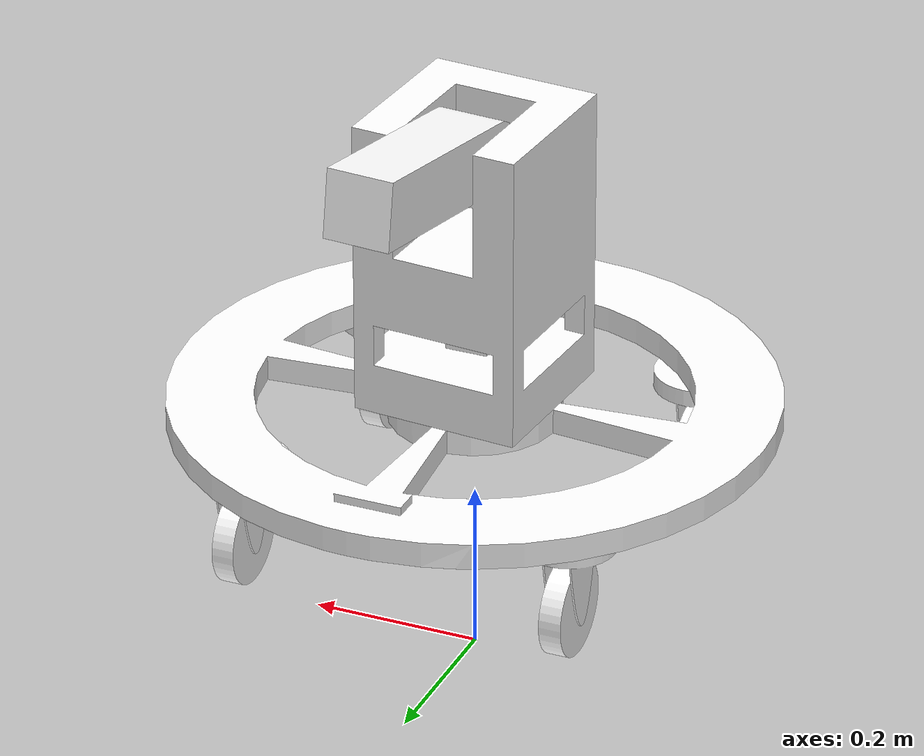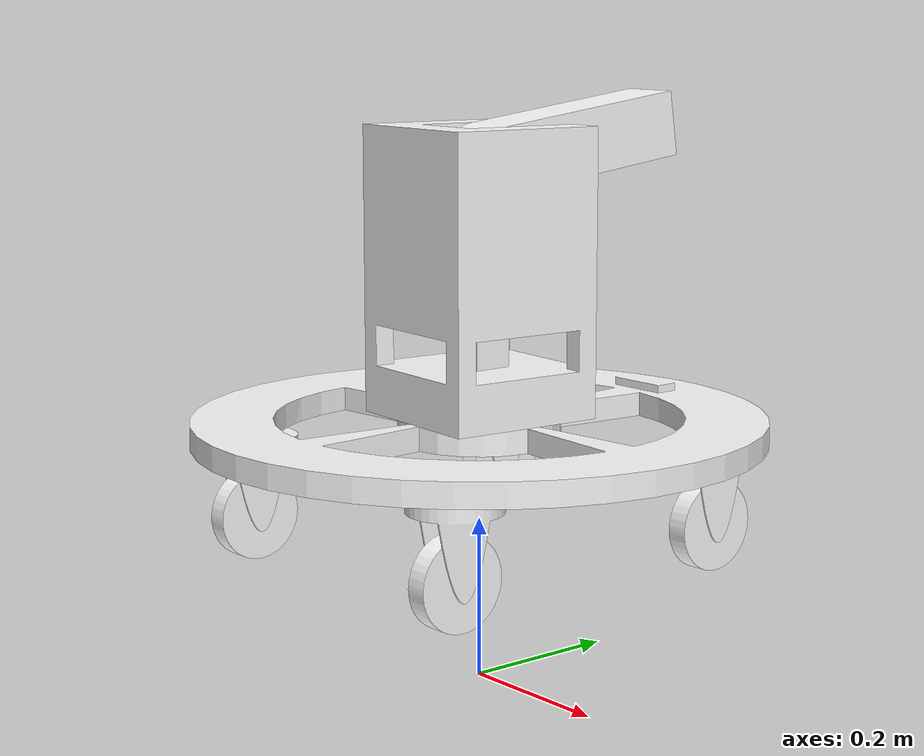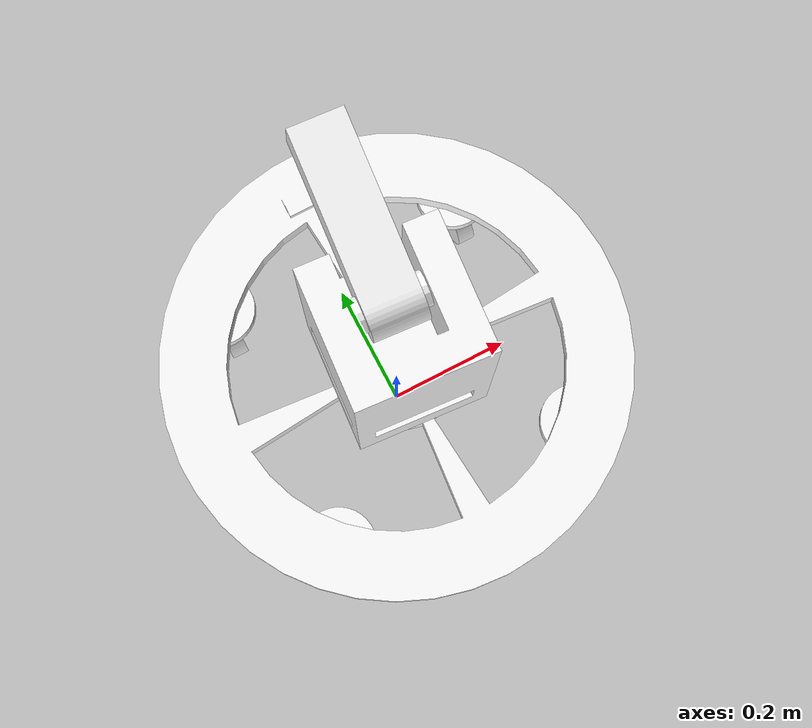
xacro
<?xml version="1.0" encoding="utf-8"?>
<robot name="simplesentry" xmlns:xacro="http://www.ros.org/wiki/xacro">

    <xacro:include filename="$(find sentry_laser_sim)/xacro_simple_sentry/chassis.xacro" />
    <xacro:include filename="$(find sentry_laser_sim)/xacro_simple_sentry/yaw.xacro" />
    <xacro:include filename="$(find sentry_laser_sim)/xacro_simple_sentry/pitch.xacro" />
    <xacro:include filename="$(find sentry_laser_sim)/xacro_simple_sentry/laser_imu.xacro" />

<!--trassimission-->
  <xacro:macro name="joint_transmission" params="prefix">
    <transmission name="trans_${prefix}">
      <type>transmission_interface/SimpleTransmission</type>
      <actuator name="${prefix}_actuator">
        <mechanicalReduction>1</mechanicalReduction>
      </actuator>
      <joint name="${prefix}_Joint">
        <hardwareInterface>hardware_interface/EffortJointInterface</hardwareInterface>
      </joint>
    </transmission>
  </xacro:macro>

<!--Joint-->
  <!--Baselink_Joint-->
  <joint name="Baselink_Joint" type="fixed">
    <origin xyz="0 0 0.3" rpy="0 0 0" />
    <parent link="base_footprint" />
    <child link="base_link" />
  </joint>

  <!--Yaw_Joint-->
  <joint
    name="Yaw_Joint"
    type="continuous">
    <origin
      xyz="3.2896E-05 0 0.09"
      rpy="0 0 0" />
    <parent
      link="base_link" />
    <child
      link="Yaw_Link" />
    <axis
      xyz="0 0 -1" />
  </joint>

  <!--Pitch_Joint-->
  <joint
    name="Pitch_Joint"
    type="continuous">
    <origin
      xyz="0.0015147 0.019943 0.25044"
      rpy="1.5708 0 3.1416" />
    <parent
      link="Yaw_Link" />
    <child
      link="Pitch_Link" />
    <axis
      xyz="0.99713 0 0.075736" />
  </joint>

  <!--Laser_Imu_Joint-->
  <joint
    name="Laser_Imu_Joint"
    type="fixed">
    <origin
      xyz="0 0 0"
      rpy="0 0 0" />
    <parent
      link="Yaw_Link" />
    <child
      link="laser_link" />
  </joint>

  <!--fake_laser_joint-->
  <joint
    name="fake_laser_joint"
    type="fixed">
    <origin
      xyz="0 0 0.01"
      rpy="0 0 0" />
    <parent
      link="laser_link" />
    <child
      link="laser_fake_link" />
  </joint>

<!--trassmission-->
  <xacro:joint_transmission prefix="Yaw"/>
  <xacro:joint_transmission prefix="Pitch"/>
  <xacro:joint_transmission prefix="Heading_Left_Front"/>
  <xacro:joint_transmission prefix="Driving_Left_Front"/>
  <xacro:joint_transmission prefix="Heading_Left_Back"/>
  <xacro:joint_transmission prefix="Driving_Left_Back"/>
  <xacro:joint_transmission prefix="Heading_Right_Front"/>
  <xacro:joint_transmission prefix="Driving_Right_Front"/>
  <xacro:joint_transmission prefix="Heading_Right_Back"/>
  <xacro:joint_transmission prefix="Driving_Right_Back"/>

    <!-- controller -->
  <gazebo>
    <plugin name="gazebo_ros_control" filename="libgazebo_ros_control.so">
                <rosDebugLevel>Debug</rosDebugLevel>
                <publishWheelTF>true</publishWheelTF>
                <robotNamespace>/simple_sentry</robotNamespace>
                <robotSimType>gazebo_ros_control/DefaultRobotHWSim</robotSimType>
                <publishTf>1</publishTf>
                <publishWheelJointState>true</publishWheelJointState>
                <alwaysOn>true</alwaysOn>
                <updateRate>20.0</updateRate>
                <legacyMode>true</legacyMode>
    </plugin>
  </gazebo>

</robot>

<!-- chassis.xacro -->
<robot name="sentry_chassis"   xmlns:xacro="http://www.ros.org/wiki/xacro">

  <link
    name="base_link">
    <inertial>
      <origin
        xyz="2.3351E-07 0.00097091 0.015088"
        rpy="0 0 0" />
      <mass
        value="6.9215" />
      <inertia
        ixx="0.27562"
        ixy="3.4079E-06"
        ixz="-1.9782E-08"
        iyy="0.27371"
        iyz="-0.00013381"
        izz="0.54827" />
    </inertial>
    <visual>
      <origin
        xyz="0 0 0"
        rpy="0 0 0" />
      <geometry>
        <mesh
          filename="package://sentry_laser_sim/simple_meshes/base_link.STL" />
      </geometry>
      <material
        name="">
        <color
          rgba="1 1 1 1" />
      </material>
    </visual>
    <collision>
      <origin
        xyz="0 0 0"
        rpy="0 0 0" />
      <geometry>
        <mesh
          filename="package://sentry_laser_sim/simple_meshes/base_link.STL" />
      </geometry>
    </collision>
  </link>

<link name="base_footprint">
   </link>

<!--加载轮系xacro-->
<xacro:include filename="$(find sentry_laser_sim)/xacro_simple_sentry/wheel_h_d.xacro" />
<xacro:sentry_wheel heading_name="Heading_Left_Front" driving_name="Driving_Left_Front" x='-0.19796' y= '0.19799' z='-0.02' />
<xacro:sentry_wheel heading_name="Heading_Left_Back" driving_name="Driving_Left_Back" x='-0.19796' y= '-0.19799' z='-0.02' />
<xacro:sentry_wheel heading_name="Heading_Right_Front" driving_name="Driving_Right_Front" x='0.19802' y= '0.19799' z='-0.02' />
<xacro:sentry_wheel heading_name="Heading_Right_Back" driving_name="Driving_Right_Back" x='0.19802' y= '-0.19799' z='-0.02' />

</robot>

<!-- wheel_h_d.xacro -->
<robot name="sentry_wheel"   xmlns:xacro="http://www.ros.org/wiki/xacro">

<xacro:macro name="sentry_wheel" params="heading_name driving_name x y z">
<link
    name="${heading_name}_Link">
    <inertial>
      <origin
        xyz="1.38777878078145E-17 0.00190966111212694 4.81482348435591E-09"
        rpy="0 0 0" />
      <mass
        value="0.222633441059111" />
      <inertia
        ixx="0.000282472342479328"
        ixy="8.75872742714748E-20"
        ixz="-1.53578455491772E-11"
        iyy="0.000299326883261327"
        iyz="9.84844083127423E-11"
        izz="0.000282445233574947" />
    </inertial>
    <visual>
      <origin
        xyz="0 0 0"
        rpy="0 0 0" />
      <geometry>
        <mesh
          filename="package://sentry_laser_sim/simple_meshes/Left_Front_Heading_Link.STL" />
      </geometry>
      <material
        name="">
        <color
          rgba="1 1 1 1" />
      </material>
    </visual>
    <collision>
      <origin
        xyz="0 0 0"
        rpy="0 0 0" />
      <geometry>
        <mesh
          filename="package://sentry_laser_sim/simple_meshes/Left_Front_Heading_Link.STL" />
      </geometry>
    </collision>
  </link>

  <joint
    name="${heading_name}_Joint"
    type="continuous">
    <origin
      xyz="${x} ${y} ${z}"
      rpy="1.5708 0 3.1416" />
    <parent
      link="base_link" />
    <child
      link="${heading_name}_Link" />
    <axis
      xyz="0 1 0" />
  </joint>

<link
    name="${driving_name}_Link">
    <inertial>
      <origin
        xyz="0.013 0 0"
        rpy="0 0 0" />
      <mass
        value="0.238918121305504" />
      <inertia
        ixx="0.000373309564539849"
        ixy="2.69533146699333E-20"
        ixz="-5.87276176762981E-21"
        iyy="0.000200113836436801"
        iyz="-1.19966360820855E-36"
        izz="0.000200113836436801" />
    </inertial>
    <visual>
      <origin
        xyz="0 0 0"
        rpy="0 0 0" />
      <geometry>
        <mesh
          filename="package://sentry_laser_sim/simple_meshes/Left_Front_Driving_Link.STL" />
      </geometry>
      <material
        name="">
        <color
          rgba="1 1 1 1" />
      </material>
    </visual>
    <collision>
      <origin
        xyz="0 0 0"
        rpy="0 0 0" />
      <geometry>
        <mesh
          filename="package://sentry_laser_sim/simple_meshes/Left_Front_Driving_Link.STL" />
      </geometry>
    </collision>
  </link>

  <joint
    name="${driving_name}_Joint"
    type="revolute">
    <origin
      xyz="-0.013 -0.08 0"
      rpy="0 0 0" />
    <parent
      link="${heading_name}_Link" />
    <child
      link="${driving_name}_Link" />
    <axis
      xyz="1 0 0" />
    <limit lower="-1e9" upper="1e9" effort="10" velocity="70" />
  </joint>

  </xacro:macro>

</robot>

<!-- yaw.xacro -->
<robot name="sentry_yaw"   xmlns:xacro="http://www.ros.org/wiki/xacro">
<link
    name="Yaw_Link">
    <inertial>
      <origin
        xyz="-0.000382893451164545 -0.00504114565025875 0.10698800887067"
        rpy="0 0 0" />
      <mass
        value="10.3493804906921" />
      <inertia
        ixx="0.149218627722498"
        ixy="0.000307277659773353"
        ixz="0.000417481332867916"
        iyy="0.153240882832408"
        iyz="0.00549652703343564"
        izz="0.0747791685099092" />
    </inertial>
    <visual>
      <origin
        xyz="0 0 0"
        rpy="0 0 0" />
      <geometry>
        <mesh
          filename="package://sentry_laser_sim/simple_meshes/Yaw_Link.STL" />
      </geometry>
      <material
        name="">
        <color
          rgba="1 1 1 1" />
      </material>
    </visual>
    <collision>
      <origin
        xyz="0 0 0"
        rpy="0 0 0" />
      <geometry>
        <mesh
          filename="package://sentry_laser_sim/simple_meshes/Yaw_Link.STL" />
      </geometry>
    </collision>
  </link>
</robot>

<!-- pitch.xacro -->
<robot name="sentry_pitch"   xmlns:xacro="http://www.ros.org/wiki/xacro">
  <link
    name="Pitch_Link">
    <inertial>
      <origin
        xyz="-0.00896541138540202 0.0169097992328111 0.118037914910391"
        rpy="0 0 0" />
      <mass
        value="1.64398229715026" />
      <inertia
        ixx="0.00813629688390596"
        ixy="6.73637561202836E-05"
        ixz="0.000472677544890049"
        iyy="0.00801271880973763"
        iyz="-0.00088690601815744"
        izz="0.00194896236802813" />
    </inertial>
    <visual>
      <origin
        xyz="0 0 0"
        rpy="0 0 0" />
      <geometry>
        <mesh
          filename="package://sentry_laser_sim/simple_meshes/Pitch_Link.STL" />
      </geometry>
      <material
        name="">
        <color
          rgba="1 1 1 1" />
      </material>
    </visual>
    <collision>
      <origin
        xyz="0 0 0"
        rpy="0 0 0" />
      <geometry>
        <mesh
          filename="package://sentry_laser_sim/simple_meshes/Pitch_Link.STL" />
      </geometry>
    </collision>
  </link>
</robot>

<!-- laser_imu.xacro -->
<robot name="sentry_laser_imu"   xmlns:xacro="http://www.ros.org/wiki/xacro">
  <link
    name="laser_link">
    <inertial>
      <origin
        xyz="-6.93889390390723E-17 -3.46944695195361E-16 0.0255156136079572"
        rpy="0 0 0" />
      <mass
        value="0.12185840734641" />
      <inertia
        ixx="5.06895795583208E-05"
        ixy="-1.44560289664713E-21"
        ixz="1.27975279084585E-21"
        iyy="5.06895795583208E-05"
        iyz="5.69889882490571E-21"
        izz="5.19262537006539E-05" />
    </inertial>
    <visual>
      <origin
        xyz="0 0 0"
        rpy="0 0 0" />
      <geometry>
        <mesh
          filename="package://sentry_laser_sim/simple_meshes/Laser_Imu_link.STL" />
      </geometry>
      <material
        name="">
        <color
          rgba="1 1 1 1" />
      </material>
    </visual>
    <collision>
      <origin
        xyz="0 0 0"
        rpy="0 0 0" />
      <geometry>
        <mesh
          filename="package://sentry_laser_sim/simple_meshes/Laser_Imu_link.STL" />
      </geometry>
    </collision>
  </link>

<!--定义矩形link-->
<xacro:macro name="mylink_tri" params="myname l w h x y z wx wy wz color r g b a mass ixx ixy ixz iyy iyz izz">
	<link name="${myname}">
	<visual>
		<geometry>
			<box size="${l} ${w} ${h}"/>
		</geometry>
		<origin xyz="${x} ${y} ${z}" rpy="${wx} ${wy} ${wz}"/>
		<meterial name="${color}">
			<color rgba="${r} ${g} ${b} ${a}"/>
		</meterial>
	</visual>
	<collision>
		<geometry>
			<box size="${l} ${w} ${h}"/>
		</geometry>
	</collision>
	<inertial>
		<mass value="${mass}"/>
		<inertia ixx="${ixx}" ixy="${ixy}" ixz="${ixz}" iyy="${iyy}" iyz="${iyz}" izz="${izz}"/>
	</inertial>
	</link>
</xacro:macro>

<!--laser_fake_link-->
<xacro:mylink_tri myname="laser_fake_link" l="0.001" w="0.001" h="0.001" x="0" y="0" z="0" wx="0" wy="0" wz="0" color="red" r="0" g="0" b="0" a="1" mass="0.001" ixx="0.0" ixy="0.0" ixz="0.0" iyy="0.0" iyz="0.0" izz="0.0"/>

<!-- imu -->
<gazebo reference="laser_fake_link">
        <gravity>true</gravity>
        <sensor name="imu_sensor" type="imu">
            <always_on>true</always_on>
            <update_rate>100</update_rate>
            <visualize>true</visualize>
            <topic>__default_topic__</topic>
            <plugin filename="libgazebo_ros_imu_sensor.so" name="imu_plugin">
                <topicName>imu</topicName>
                <bodyName>imu</bodyName>
                <updateRateHZ>100.0</updateRateHZ>
                <gaussianNoise>0.0</gaussianNoise>
                <xyzOffset>0 0 0</xyzOffset>
                <rpyOffset>0 0 0</rpyOffset>
                <frameName>laser_fake_link</frameName>
            </plugin>
            <pose>0 0 0 0 0 0</pose>
        </sensor>
    </gazebo>

<!--livox_laser_simulation-->
<xacro:property name="M_PI" value="3.14159"/>
  <xacro:property name="laser_min_range" value="0.1"/>
  <xacro:property name="laser_max_range" value="200.0"/>
  <xacro:property name="ros_topic" value="scan1"/>
  <xacro:property name="samples" value="10000"/>
  <xacro:property name="downsample" value="0"/>

  <xacro:macro name="null_inertial">
    <inertial>
      <mass value="0.1"/>
    <inertia ixx="0.01" ixy="0" ixz="0"
          iyy="0.01" iyz="0"
          izz="0.01"/>
    </inertial>
  </xacro:macro>

  <xacro:macro name="Livox_Mid_gazebo_sensor" params="visualize:=True update_rate:=10 resolution:=0.002 noise_mean:=0.0 noise_stddev:=0.01 name:=laser">
    <gazebo reference="${name}_fake_link">
      <sensor type="ray" name="${name}_livox">
        <pose>0 0 0 0 0 0</pose>
        <visualize>${visualize}</visualize>
        <update_rate>10</update_rate>
        <plugin name="gazebo_ros_laser_controller" filename="liblivox_laser_simulation.so">
			<ray>
			  <scan>
				<horizontal>
				<samples>100</samples>
				<resolution>1</resolution>
				<min_angle>${0}</min_angle>
				<max_angle>${2*M_PI}</max_angle>
				</horizontal>
				<vertical>
				<samples>50</samples>
				<resolution>1</resolution>
				<min_angle>${-7.22/180*M_PI}</min_angle>
				<max_angle>${55.22/180*M_PI}</max_angle>
				</vertical>
			  </scan>
			  <range>
				<min>${laser_min_range}</min>
				<max>${laser_max_range}</max>
				<resolution>${resolution}</resolution>
			  </range>
			  <noise>
				<type>gaussian</type>
				<mean>${noise_mean}</mean>
				<stddev>${noise_stddev}</stddev>
			  </noise>
			</ray>
          <visualize>${visualize}</visualize>
		  <samples>${samples}</samples>
		  <downsample>${downsample}</downsample>
		  <csv_file_name>package://sentry_laser_sim/scan_mode/mid360.csv</csv_file_name>
		  <ros_topic>${ros_topic}</ros_topic>
        </plugin>
      </sensor>
    </gazebo>
  </xacro:macro>

    <xacro:Livox_Mid_gazebo_sensor name="laser" visualize="true"/>

</robot>
